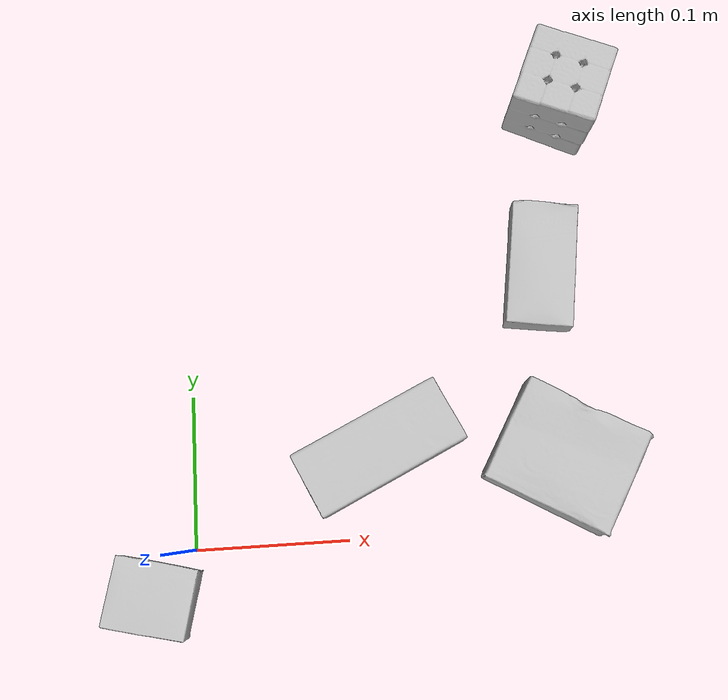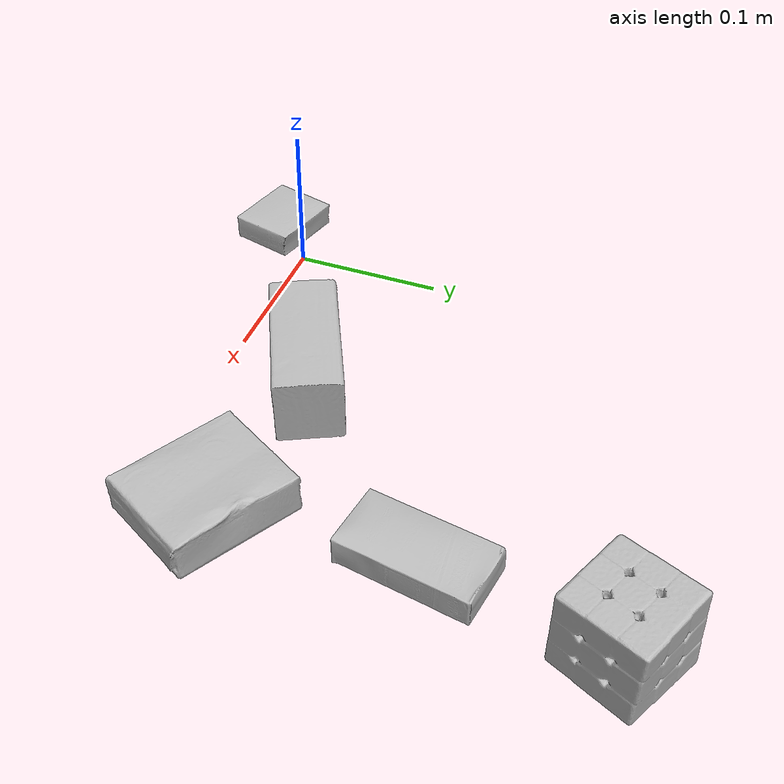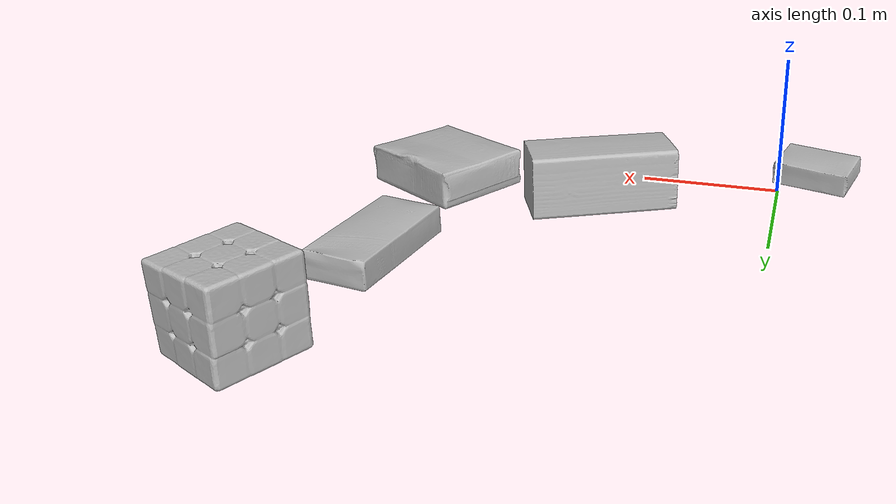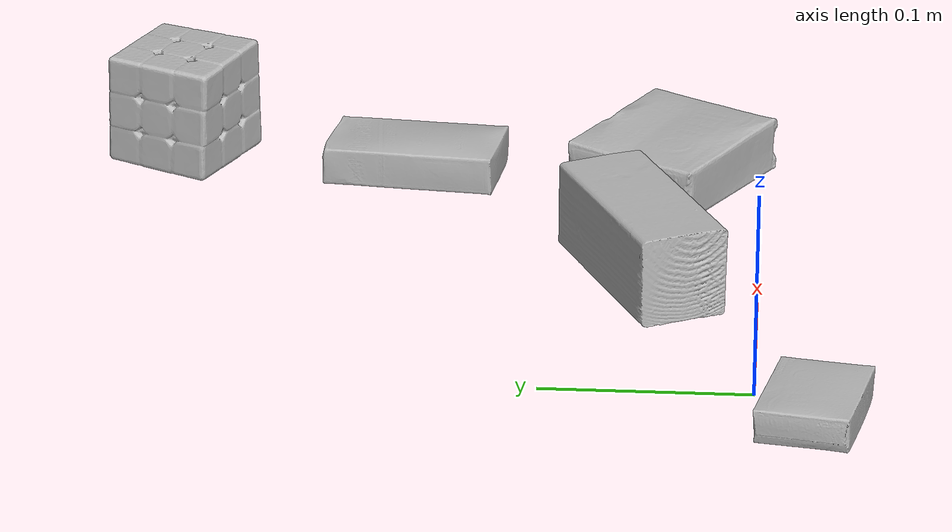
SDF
<sdf version="1.4">
  <world name="default">
    <light name="light1" type="point">
      <pose>0 0 1 0 0 0</pose>
      <diffuse>3 3 3 1</diffuse>
      <specular>3 3 3 1</specular>
    </light>
    <light name="light2" type="point">
      <pose>0 0.5 2 0 0 0</pose>
      <diffuse>1 1 1 1</diffuse>
      <specular>1 1 1 1</specular>
    </light>
    <light name="light3" type="point">
      <pose>0 0.5 2 0 0 0</pose>
      <diffuse>3 3 3 1</diffuse>
      <specular>3 3 3 1</specular>
    </light>
    <scene>
      <ambient>0.7 0.7 0.7</ambient>
    </scene>
    <model name="box1">
      <link name="link_box1">
        <collision name="default">
          <geometry>
            <mesh>
              <uri>model://gelatin_box/collision_meshes/collision.obj</uri>
              <scale>1.0 1.0 1.0</scale>
            </mesh>
          </geometry>
          <surface>
            <friction>
              <ode>
                <mu>0.5</mu>
                <mu2>0.5</mu2>
              </ode>
            </friction>
          <contact>
        <ode>
            <max_vel>0</max_vel>
            <min_depth>0.0001</min_depth>
            <kp>1e8</kp>
        </ode>
    </contact></surface>
        </collision>
        <visual name="default">
          <geometry>
            <mesh>
              <uri>model://gelatin_box/visual_meshes/visual.dae</uri>
              <scale>1.0 1.0 1.0</scale>
            </mesh>
          </geometry>
        </visual>
        <inertial>
          <mass>0.15228882431983948</mass>
          <pose>0.0004319618456065655 0.00011156871914863586 -0.0003640321083366871 -0.00105037218966889 -0.004755816826754503 0.0164405576082189</pose>
          <inertia>
            <ixx>0.00010750349</ixx>
            <iyy>7.678918e-05</iyy>
            <izz>0.00016364428</izz>
            <ixy>0</ixy>
            <ixz>0</ixz>
            <iyz>0</iyz>
          </inertia>
        </inertial>
      </link>
      <pose>0.24402037262916565 0.04476947337388992 0.015168317593634129 0.005597446806829502 -0.007304507835046993 1.0444818476490876</pose>
    </model>
    <model name="box2">
      <link name="link_box2">
        <collision name="default">
          <geometry>
            <mesh>
              <uri>model://rubiks_cube/collision_meshes/collision.obj</uri>
              <scale>1.0 1.0 1.0</scale>
            </mesh>
          </geometry>
          <surface>
            <friction>
              <ode>
                <mu>0.5</mu>
                <mu2>0.5</mu2>
              </ode>
            </friction>
          <contact>
        <ode>
            <max_vel>0</max_vel>
            <min_depth>0.0001</min_depth>
            <kp>1e8</kp>
        </ode>
    </contact></surface>
        </collision>
        <visual name="default">
          <geometry>
            <mesh>
              <uri>model://rubiks_cube/visual_meshes/visual.dae</uri>
              <scale>1.0 1.0 1.0</scale>
            </mesh>
          </geometry>
        </visual>
        <inertial>
          <mass>0.18699690699577332</mass>
          <pose>2.6721041649580002e-05 5.2569666877388954e-05 -7.264316082000732e-06 -0.054672785544912415 -0.09814058570479768 -0.03445363054661819</pose>
          <inertia>
            <ixx>0.00010332834</ixx>
            <iyy>0.00010284647</iyy>
            <izz>0.000104184575</izz>
            <ixy>0</ixy>
            <ixz>0</ixz>
            <iyz>0</iyz>
          </inertia>
        </inertial>
      </link>
      <pose>0.26231229305267334 0.29528358578681946 0.02867896668612957 -3.5105013344709534e-06 -9.720590783273807e-07 -0.40298659851878244</pose>
    </model>
    <model name="box3">
      <link name="link_box3">
        <collision name="default">
          <geometry>
            <mesh>
              <uri>model://pudding_box/collision_meshes/collision.obj</uri>
              <scale>0.5 0.5 0.5</scale>
            </mesh>
          </geometry>
          <surface>
            <friction>
              <ode>
                <mu>0.5</mu>
                <mu2>0.5</mu2>
              </ode>
            </friction>
          <contact>
        <ode>
            <max_vel>0</max_vel>
            <min_depth>0.0001</min_depth>
            <kp>1e8</kp>
        </ode>
    </contact></surface>
        </collision>
        <visual name="default">
          <geometry>
            <mesh>
              <uri>model://pudding_box/visual_meshes/visual.dae</uri>
              <scale>0.5 0.5 0.5</scale>
            </mesh>
          </geometry>
        </visual>
        <inertial>
          <mass>0.04129739850759506</mass>
          <pose>0.00024474109522998333 0.00040339428232982755 -0.0002594413817860186 0.005213100432551209 -0.006603796827212886 0.020079819580048088</pose>
          <inertia>
            <ixx>1.1671145e-05</ixx>
            <iyy>7.852431e-06</iyy>
            <izz>1.7235501e-05</izz>
            <ixy>0</ixy>
            <ixz>0</ixz>
            <iyz>0</iyz>
          </inertia>
        </inertial>
      </link>
      <pose>-0.02701736055314541 -0.02719973586499691 0.009862898848950863 0.02234852381402239 -0.01139170191247166 -1.7991287270445935</pose>
    </model>
    <model name="box4">
      <link name="link_box4">
        <collision name="default">
          <geometry>
            <mesh>
              <uri>model://sugar_box/collision_meshes/collision.obj</uri>
              <scale>0.5 0.5 0.5</scale>
            </mesh>
          </geometry>
          <surface>
            <friction>
              <ode>
                <mu>0.5</mu>
                <mu2>0.5</mu2>
              </ode>
            </friction>
          <contact>
        <ode>
            <max_vel>0</max_vel>
            <min_depth>0.0001</min_depth>
            <kp>1e8</kp>
        </ode>
    </contact></surface>
        </collision>
        <visual name="default">
          <geometry>
            <mesh>
              <uri>model://sugar_box/visual_meshes/visual.dae</uri>
              <scale>0.5 0.5 0.5</scale>
            </mesh>
          </geometry>
        </visual>
        <inertial>
          <mass>0.09136254340410233</mass>
          <pose>0.0005171863595023751 1.924554817378521e-05 -0.00018182402709499002 -0.00040462606744182556 0.0010506635219056535 0.0026153790218759383</pose>
          <inertia>
            <ixx>1.9030753e-05</ixx>
            <iyy>6.15113e-05</iyy>
            <izz>7.363638e-05</izz>
            <ixy>0</ixy>
            <ixz>0</ixz>
            <iyz>0</iyz>
          </inertia>
        </inertial>
      </link>
      <pose>0.24116946756839752 0.17512060701847076 0.011399300768971443 0.0007752293380272686 -0.0234325307649285 -1.7246331571604918</pose>
    </model>
    <model name="box5">
      <link name="link_box5">
        <collision name="default">
          <geometry>
            <mesh>
              <uri>model://wood_block/collision_meshes/collision.obj</uri>
              <scale>0.5 0.5 0.5</scale>
            </mesh>
          </geometry>
          <surface>
            <friction>
              <ode>
                <mu>0.5</mu>
                <mu2>0.5</mu2>
              </ode>
            </friction>
          <contact>
        <ode>
            <max_vel>0</max_vel>
            <min_depth>0.0001</min_depth>
            <kp>1e8</kp>
        </ode>
    </contact></surface>
        </collision>
        <visual name="default">
          <geometry>
            <mesh>
              <uri>model://wood_block/visual_meshes/visual.dae</uri>
              <scale>0.5 0.5 0.5</scale>
            </mesh>
          </geometry>
        </visual>
        <inertial>
          <mass>0.2591090798377991</mass>
          <pose>-2.9066577553749084e-06 -0.00028540470520965755 0.00013204290007706732 -0.05220937491622274 -0.005192696068464721 -0.006861378365732138</pose>
          <inertia>
            <ixx>8.6681786e-05</ixx>
            <iyy>0.00027382775</iyy>
            <izz>0.0002728035</izz>
            <ixy>0</ixy>
            <ixz>0</ixz>
            <iyz>0</iyz>
          </inertia>
        </inertial>
      </link>
      <pose>0.1225569024682045 0.05636977031826973 0.02262926660478115 -0.005208379286720407 0.005718731312716026 -2.693042644753968</pose>
    </model>
  <physics type="ode">
      <max_contacts>50</max_contacts>
      <ode>
        <solver>
          <type>quick</type>
          <iters>75</iters>
        </solver>
        <constraints>
          <contact_max_correcting_vel>0</contact_max_correcting_vel>
          <contact_surface_layer>0</contact_surface_layer>
        </constraints>
      </ode>
    </physics></world>
</sdf>
